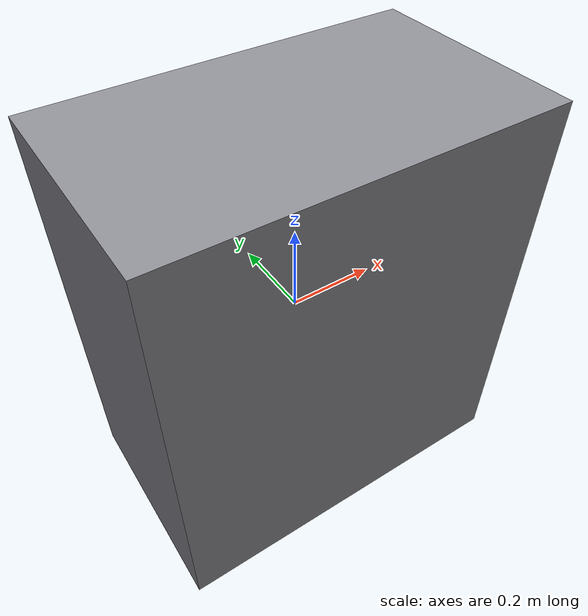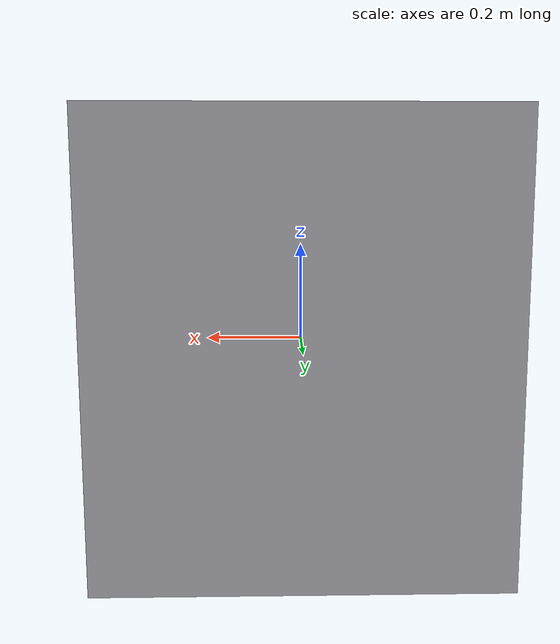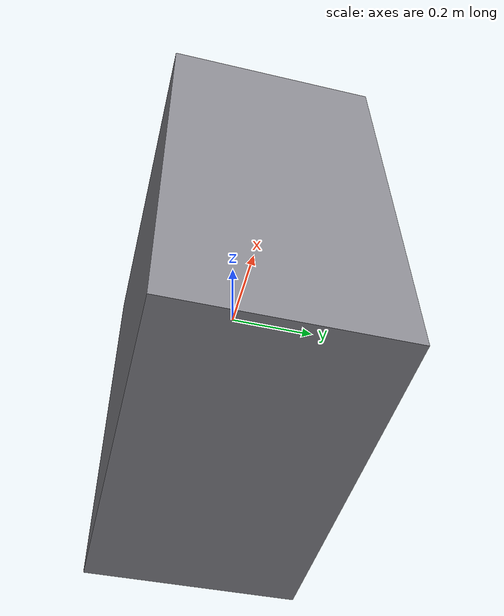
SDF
<?xml version="1.0"?>
<sdf version="1.6">
  <model name="ParkingTrolleyMin">
    <static>true</static>
    <link name="link">
      <collision name="col">
        <geometry>
          <box>
            <size>0.85 0.5 0.95</size>
          </box>
        </geometry>
      </collision>
      <visual name="vis">
        <geometry>
          <box>
            <size>0.85 0.5 0.95</size>
          </box>
        </geometry>
        <material>
          <ambient>0.55 0.55 0.58 1</ambient>
          <diffuse>0.55 0.55 0.58 1</diffuse>
        </material>
      </visual>
    </link>
  </model>
</sdf>
